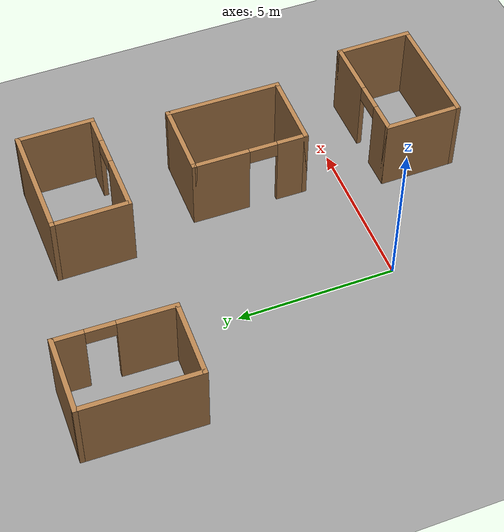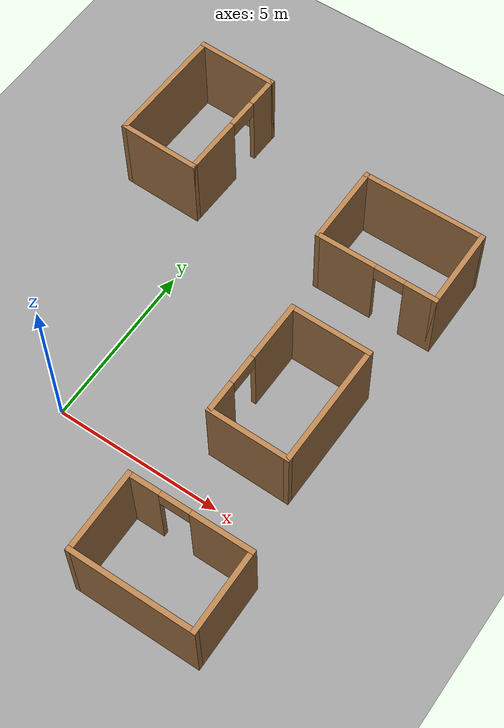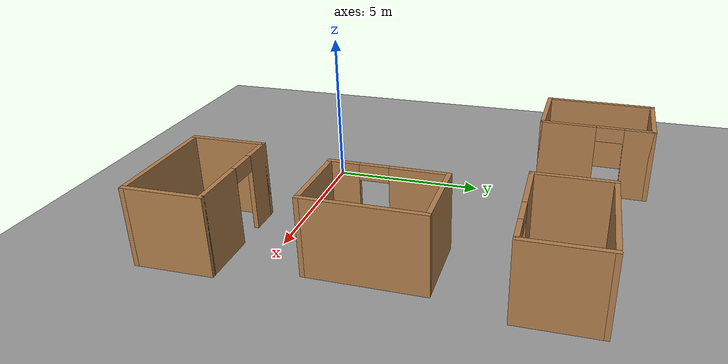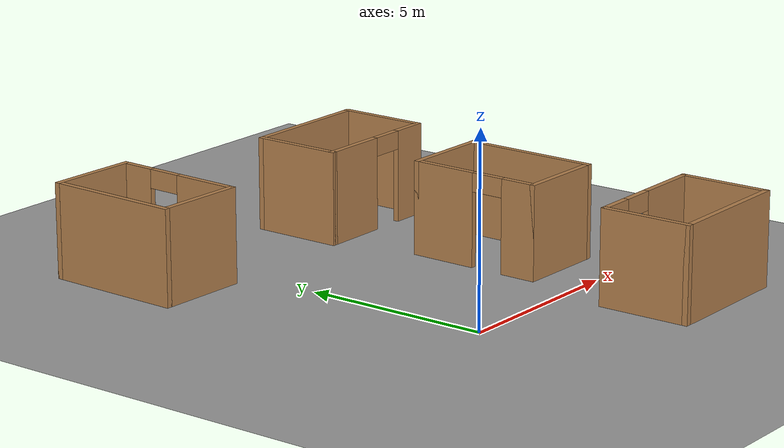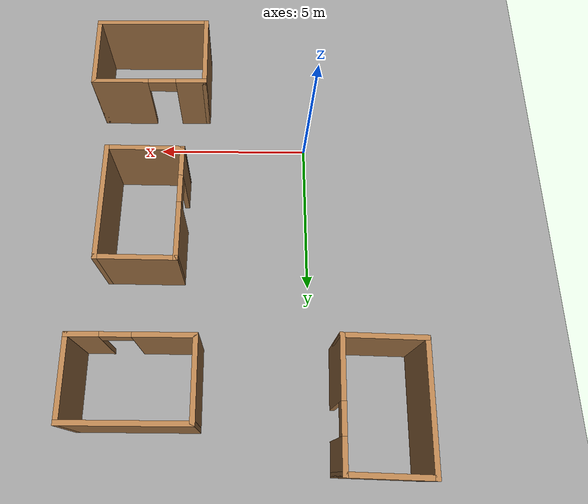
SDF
<sdf version="1.6">
 <world name="default">
  <model name="ground_plane_0">
   <static>1</static>
   <link name="link">
    <collision name="collision">
     <geometry><plane><normal>0 0 1</normal><size>100 100</size></plane></geometry>
     <surface><friction><ode><mu>100</mu><mu2>50</mu2></ode></friction></surface>
    </collision>
    <visual name="visual">
     <cast_shadows>0</cast_shadows>
     <geometry><plane><normal>0 0 1</normal><size>100 100</size></plane></geometry>
     <material>
      <script><uri>file://media/materials/scripts/gazebo.material</uri><name>Gazebo/Grey</name></script>
     </material>
    </visual>
    <velocity_decay><linear>0</linear><angular>0</angular></velocity_decay>
   </link>
   <pose>0.497681 0 0 0 -0 0</pose>
  </model>
  <model name="Small_Room_clone_3">
   <pose>-1.81019 8.891 0 0 -0 1.54404</pose>
   <link name="Wall_0">
    <pose>0 -1.175 0 0 -0 0</pose>
    <visual name="Wall_0_Visual_0">
     <pose>-0.9525 0 1.25 0 -0 0</pose>
     <geometry><box><size>1.845 0.15 2.5</size></box></geometry>
     <material>
      <script><uri>file://media/materials/scripts/gazebo.material</uri><name>Gazebo/Wood</name></script>
      <ambient>1 1 1 1</ambient>
     </material>
     <meta><layer>0</layer></meta>
    </visual>
    <collision name="Wall_0_Collision_0">
     <geometry><box><size>1.845 0.15 2.5</size></box></geometry>
     <pose>-0.9525 0 1.25 0 -0 0</pose>
    </collision>
    <visual name="Wall_0_Visual_1">
     <pose>1.3725 0 1.25 0 -0 0</pose>
     <geometry><box><size>1.005 0.15 2.5</size></box></geometry>
     <material>
      <script><uri>file://media/materials/scripts/gazebo.material</uri><name>Gazebo/Wood</name></script>
      <ambient>1 1 1 1</ambient>
     </material>
     <meta><layer>0</layer></meta>
    </visual>
    <collision name="Wall_0_Collision_1">
     <geometry><box><size>1.005 0.15 2.5</size></box></geometry>
     <pose>1.3725 0 1.25 0 -0 0</pose>
    </collision>
    <visual name="Wall_0_Visual_2">
     <pose>0.42 0 2.25 0 -0 0</pose>
     <geometry><box><size>0.9 0.15 0.5</size></box></geometry>
     <material>
      <script><uri>file://media/materials/scripts/gazebo.material</uri><name>Gazebo/Wood</name></script>
      <ambient>1 1 1 1</ambient>
     </material>
     <meta><layer>0</layer></meta>
    </visual>
    <collision name="Wall_0_Collision_2">
     <geometry><box><size>0.9 0.15 0.5</size></box></geometry>
     <pose>0.42 0 2.25 0 -0 0</pose>
    </collision>
   </link>
   <link name="Wall_1">
    <collision name="Wall_1_Collision">
     <geometry><box><size>2.5 0.15 2.5</size></box></geometry>
     <pose>0 0 1.25 0 -0 0</pose>
    </collision>
    <visual name="Wall_1_Visual">
     <pose>0 0 1.25 0 -0 0</pose>
     <geometry><box><size>2.5 0.15 2.5</size></box></geometry>
     <material>
      <script><uri>file://media/materials/scripts/gazebo.material</uri><name>Gazebo/Wood</name></script>
      <ambient>1 1 1 1</ambient>
     </material>
     <meta><layer>0</layer></meta>
    </visual>
    <pose>1.8 0 0 0 -0 1.5708</pose>
   </link>
   <link name="Wall_2">
    <collision name="Wall_2_Collision">
     <geometry><box><size>3.75 0.15 2.5</size></box></geometry>
     <pose>0 0 1.25 0 -0 0</pose>
    </collision>
    <visual name="Wall_2_Visual">
     <pose>0 0 1.25 0 -0 0</pose>
     <geometry><box><size>3.75 0.15 2.5</size></box></geometry>
     <material>
      <script><uri>file://media/materials/scripts/gazebo.material</uri><name>Gazebo/Wood</name></script>
      <ambient>0.760784 0.662745 0.627451 1</ambient>
     </material>
     <meta><layer>0</layer></meta>
    </visual>
    <pose>0 1.175 0 0 -0 3.14159</pose>
   </link>
   <link name="Wall_3">
    <collision name="Wall_3_Collision">
     <geometry><box><size>2.5 0.15 2.5</size></box></geometry>
     <pose>0 0 1.25 0 -0 0</pose>
    </collision>
    <visual name="Wall_3_Visual">
     <pose>0 0 1.25 0 -0 0</pose>
     <geometry><box><size>2.5 0.15 2.5</size></box></geometry>
     <material>
      <script><uri>file://media/materials/scripts/gazebo.material</uri><name>Gazebo/Wood</name></script>
      <ambient>0.760784 0.662745 0.627451 1</ambient>
     </material>
     <meta><layer>0</layer></meta>
    </visual>
    <pose>-1.8 0 0 0 0 -1.5708</pose>
   </link>
   <static>1</static>
  </model>
  <model name="Small_Room_clone_0_0">
   <link name="Wall_0">
    <pose>0 -1.175 0 0 -0 0</pose>
    <inertial>
     <mass>1</mass>
     <inertia><ixx>1</ixx><ixy>0</ixy><ixz>0</ixz><iyy>1</iyy><iyz>0</iyz><izz>1</izz></inertia>
    </inertial>
    <visual name="Wall_0_Visual_0">
     <pose>-0.9525 0 1.25 0 -0 0</pose>
     <geometry><box><size>1.845 0.15 2.5</size></box></geometry>
     <material>
      <script><uri>file://media/materials/scripts/gazebo.material</uri><name>Gazebo/Wood</name></script>
      <ambient>1 1 1 1</ambient>
      <diffuse>1 1 1 1</diffuse>
      <specular>0.2 0.2 0.2 1</specular>
      <emissive>0 0 0 1</emissive>
      <shader type="vertex"><normal_map>__default__</normal_map></shader>
     </material>
     <meta><layer>0</layer></meta>
    </visual>
    <visual name="Wall_0_Visual_1">
     <pose>1.3725 0 1.25 0 -0 0</pose>
     <geometry><box><size>1.005 0.15 2.5</size></box></geometry>
     <material>
      <script><uri>file://media/materials/scripts/gazebo.material</uri><name>Gazebo/Wood</name></script>
      <ambient>1 1 1 1</ambient>
      <diffuse>1 1 1 1</diffuse>
      <specular>0.2 0.2 0.2 1</specular>
      <emissive>0 0 0 1</emissive>
      <shader type="vertex"><normal_map>__default__</normal_map></shader>
     </material>
     <meta><layer>0</layer></meta>
    </visual>
    <visual name="Wall_0_Visual_2">
     <pose>0.42 0 2.25 0 -0 0</pose>
     <geometry><box><size>0.9 0.15 0.5</size></box></geometry>
     <material>
      <script><uri>file://media/materials/scripts/gazebo.material</uri><name>Gazebo/Wood</name></script>
      <ambient>1 1 1 1</ambient>
      <diffuse>1 1 1 1</diffuse>
      <specular>0.2 0.2 0.2 1</specular>
      <emissive>0 0 0 1</emissive>
      <shader type="vertex"><normal_map>__default__</normal_map></shader>
     </material>
     <meta><layer>0</layer></meta>
    </visual>
    <collision name="Wall_0_Collision_0">
     <pose>-0.9525 0 1.25 0 -0 0</pose>
     <geometry><box><size>1.845 0.15 2.5</size></box></geometry>
     <surface>
      <friction>
       <ode><mu>1</mu><mu2>1</mu2><fdir1>0 0 0</fdir1><slip1>0</slip1><slip2>0</slip2></ode>
       <torsional>
        <coefficient>1</coefficient>
        <patch_radius>0</patch_radius>
        <surface_radius>0</surface_radius>
        <use_patch_radius>1</use_patch_radius>
        <ode><slip>0</slip></ode>
       </torsional>
      </friction>
      <bounce><restitution_coefficient>0</restitution_coefficient><threshold>1e+06</threshold></bounce>
      <contact>
       <collide_without_contact>0</collide_without_contact>
       <collide_without_contact_bitmask>1</collide_without_contact_bitmask>
       <collide_bitmask>1</collide_bitmask>
       <ode>
        <soft_cfm>0</soft_cfm>
        <soft_erp>0.2</soft_erp>
        <kp>1e+13</kp>
        <kd>1</kd>
        <max_vel>0.01</max_vel>
        <min_depth>0</min_depth>
       </ode>
       <bullet>
        <split_impulse>1</split_impulse>
        <split_impulse_penetration_threshold>-0.01</split_impulse_penetration_threshold>
        <soft_cfm>0</soft_cfm>
        <soft_erp>0.2</soft_erp>
        <kp>1e+13</kp>
        <kd>1</kd>
       </bullet>
      </contact>
     </surface>
    </collision>
    <collision name="Wall_0_Collision_1">
     <pose>1.3725 0 1.25 0 -0 0</pose>
     <geometry><box><size>1.005 0.15 2.5</size></box></geometry>
     <surface>
      <friction>
       <ode><mu>1</mu><mu2>1</mu2><fdir1>0 0 0</fdir1><slip1>0</slip1><slip2>0</slip2></ode>
       <torsional>
        <coefficient>1</coefficient>
        <patch_radius>0</patch_radius>
        <surface_radius>0</surface_radius>
        <use_patch_radius>1</use_patch_radius>
        <ode><slip>0</slip></ode>
       </torsional>
      </friction>
      <bounce><restitution_coefficient>0</restitution_coefficient><threshold>1e+06</threshold></bounce>
      <contact>
       <collide_without_contact>0</collide_without_contact>
       <collide_without_contact_bitmask>1</collide_without_contact_bitmask>
       <collide_bitmask>1</collide_bitmask>
       <ode>
        <soft_cfm>0</soft_cfm>
        <soft_erp>0.2</soft_erp>
        <kp>1e+13</kp>
        <kd>1</kd>
        <max_vel>0.01</max_vel>
        <min_depth>0</min_depth>
       </ode>
       <bullet>
        <split_impulse>1</split_impulse>
        <split_impulse_penetration_threshold>-0.01</split_impulse_penetration_threshold>
        <soft_cfm>0</soft_cfm>
        <soft_erp>0.2</soft_erp>
        <kp>1e+13</kp>
        <kd>1</kd>
       </bullet>
      </contact>
     </surface>
    </collision>
    <collision name="Wall_0_Collision_2">
     <pose>0.42 0 2.25 0 -0 0</pose>
     <geometry><box><size>0.9 0.15 0.5</size></box></geometry>
     <surface>
      <friction>
       <ode><mu>1</mu><mu2>1</mu2><fdir1>0 0 0</fdir1><slip1>0</slip1><slip2>0</slip2></ode>
       <torsional>
        <coefficient>1</coefficient>
        <patch_radius>0</patch_radius>
        <surface_radius>0</surface_radius>
        <use_patch_radius>1</use_patch_radius>
        <ode><slip>0</slip></ode>
       </torsional>
      </friction>
      <bounce><restitution_coefficient>0</restitution_coefficient><threshold>1e+06</threshold></bounce>
      <contact>
       <collide_without_contact>0</collide_without_contact>
       <collide_without_contact_bitmask>1</collide_without_contact_bitmask>
       <collide_bitmask>1</collide_bitmask>
       <ode>
        <soft_cfm>0</soft_cfm>
        <soft_erp>0.2</soft_erp>
        <kp>1e+13</kp>
        <kd>1</kd>
        <max_vel>0.01</max_vel>
        <min_depth>0</min_depth>
       </ode>
       <bullet>
        <split_impulse>1</split_impulse>
        <split_impulse_penetration_threshold>-0.01</split_impulse_penetration_threshold>
        <soft_cfm>0</soft_cfm>
        <soft_erp>0.2</soft_erp>
        <kp>1e+13</kp>
        <kd>1</kd>
       </bullet>
      </contact>
     </surface>
    </collision>
   </link>
   <link name="Wall_1">
    <pose>1.8 0 0 0 -0 1.5708</pose>
    <inertial>
     <mass>1</mass>
     <inertia><ixx>1</ixx><ixy>0</ixy><ixz>0</ixz><iyy>1</iyy><iyz>0</iyz><izz>1</izz></inertia>
    </inertial>
    <visual name="Wall_1_Visual">
     <pose>0 0 1.25 0 -0 0</pose>
     <geometry><box><size>2.5 0.15 2.5</size></box></geometry>
     <material>
      <script><uri>file://media/materials/scripts/gazebo.material</uri><name>Gazebo/Wood</name></script>
      <ambient>1 1 1 1</ambient>
      <diffuse>1 1 1 1</diffuse>
      <specular>0.2 0.2 0.2 1</specular>
      <emissive>0 0 0 1</emissive>
      <shader type="vertex"><normal_map>__default__</normal_map></shader>
     </material>
     <meta><layer>0</layer></meta>
    </visual>
    <collision name="Wall_1_Collision">
     <pose>0 0 1.25 0 -0 0</pose>
     <geometry><box><size>2.5 0.15 2.5</size></box></geometry>
     <surface>
      <friction>
       <ode><mu>1</mu><mu2>1</mu2><fdir1>0 0 0</fdir1><slip1>0</slip1><slip2>0</slip2></ode>
       <torsional>
        <coefficient>1</coefficient>
        <patch_radius>0</patch_radius>
        <surface_radius>0</surface_radius>
        <use_patch_radius>1</use_patch_radius>
        <ode><slip>0</slip></ode>
       </torsional>
      </friction>
      <bounce><restitution_coefficient>0</restitution_coefficient><threshold>1e+06</threshold></bounce>
      <contact>
       <collide_without_contact>0</collide_without_contact>
       <collide_without_contact_bitmask>1</collide_without_contact_bitmask>
       <collide_bitmask>1</collide_bitmask>
       <ode>
        <soft_cfm>0</soft_cfm>
        <soft_erp>0.2</soft_erp>
        <kp>1e+13</kp>
        <kd>1</kd>
        <max_vel>0.01</max_vel>
        <min_depth>0</min_depth>
       </ode>
       <bullet>
        <split_impulse>1</split_impulse>
        <split_impulse_penetration_threshold>-0.01</split_impulse_penetration_threshold>
        <soft_cfm>0</soft_cfm>
        <soft_erp>0.2</soft_erp>
        <kp>1e+13</kp>
        <kd>1</kd>
       </bullet>
      </contact>
     </surface>
    </collision>
   </link>
   <link name="Wall_2">
    <pose>-0 1.175 0 0 -0 3.14159</pose>
    <visual name="Wall_2_Visual">
     <pose>0 0 1.25 0 -0 0</pose>
     <geometry><box><size>3.75 0.15 2.5</size></box></geometry>
     <material>
      <script><uri>file://media/materials/scripts/gazebo.material</uri><name>Gazebo/Wood</name></script>
      <ambient>0.760784 0.662745 0.627451 1</ambient>
      <diffuse>1 1 1 1</diffuse>
      <specular>0.2 0.2 0.2 1</specular>
      <emissive>0 0 0 1</emissive>
     </material>
     <meta><layer>0</layer></meta>
    </visual>
    <collision name="Wall_2_Collision">
     <pose>0 0 1.25 0 -0 0</pose>
     <geometry><box><size>3.75 0.15 2.5</size></box></geometry>
     <surface>
      <friction>
       <ode><mu>1</mu><mu2>1</mu2><fdir1>0 0 0</fdir1><slip1>0</slip1><slip2>0</slip2></ode>
       <torsional>
        <coefficient>1</coefficient>
        <patch_radius>0</patch_radius>
        <surface_radius>0</surface_radius>
        <use_patch_radius>1</use_patch_radius>
        <ode><slip>0</slip></ode>
       </torsional>
      </friction>
      <bounce><restitution_coefficient>0</restitution_coefficient><threshold>1e+06</threshold></bounce>
      <contact>
       <collide_without_contact>0</collide_without_contact>
       <collide_without_contact_bitmask>1</collide_without_contact_bitmask>
       <collide_bitmask>1</collide_bitmask>
       <ode>
        <soft_cfm>0</soft_cfm>
        <soft_erp>0.2</soft_erp>
        <kp>1e+13</kp>
        <kd>1</kd>
        <max_vel>0.01</max_vel>
        <min_depth>0</min_depth>
       </ode>
       <bullet>
        <split_impulse>1</split_impulse>
        <split_impulse_penetration_threshold>-0.01</split_impulse_penetration_threshold>
        <soft_cfm>0</soft_cfm>
        <soft_erp>0.2</soft_erp>
        <kp>1e+13</kp>
        <kd>1</kd>
       </bullet>
      </contact>
     </surface>
    </collision>
   </link>
   <link name="Wall_3">
    <pose>-1.8 -0 0 0 0 -1.5708</pose>
    <inertial>
     <mass>1</mass>
     <inertia><ixx>1</ixx><ixy>0</ixy><ixz>0</ixz><iyy>1</iyy><iyz>0</iyz><izz>1</izz></inertia>
    </inertial>
    <visual name="Wall_3_Visual">
     <pose>0 0 1.25 0 -0 0</pose>
     <geometry><box><size>2.5 0.15 2.5</size></box></geometry>
     <material>
      <script><uri>file://media/materials/scripts/gazebo.material</uri><name>Gazebo/Wood</name></script>
      <ambient>0.761 0.663 0.627 1</ambient>
      <diffuse>1 1 1 1</diffuse>
      <specular>0.2 0.2 0.2 1</specular>
      <emissive>0 0 0 1</emissive>
      <shader type="vertex"><normal_map>__default__</normal_map></shader>
     </material>
     <meta><layer>0</layer></meta>
    </visual>
    <collision name="Wall_3_Collision">
     <pose>0 0 1.25 0 -0 0</pose>
     <geometry><box><size>2.5 0.15 2.5</size></box></geometry>
     <surface>
      <friction>
       <ode><mu>1</mu><mu2>1</mu2><fdir1>0 0 0</fdir1><slip1>0</slip1><slip2>0</slip2></ode>
       <torsional>
        <coefficient>1</coefficient>
        <patch_radius>0</patch_radius>
        <surface_radius>0</surface_radius>
        <use_patch_radius>1</use_patch_radius>
        <ode><slip>0</slip></ode>
       </torsional>
      </friction>
      <bounce><restitution_coefficient>0</restitution_coefficient><threshold>1e+06</threshold></bounce>
      <contact>
       <collide_without_contact>0</collide_without_contact>
       <collide_without_contact_bitmask>1</collide_without_contact_bitmask>
       <collide_bitmask>1</collide_bitmask>
       <ode>
        <soft_cfm>0</soft_cfm>
        <soft_erp>0.2</soft_erp>
        <kp>1e+13</kp>
        <kd>1</kd>
        <max_vel>0.01</max_vel>
        <min_depth>0</min_depth>
       </ode>
       <bullet>
        <split_impulse>1</split_impulse>
        <split_impulse_penetration_threshold>-0.01</split_impulse_penetration_threshold>
        <soft_cfm>0</soft_cfm>
        <soft_erp>0.2</soft_erp>
        <kp>1e+13</kp>
        <kd>1</kd>
       </bullet>
      </contact>
     </surface>
    </collision>
   </link>
   <static>1</static>
   <pose>5.21109 -2.41031 0 0 0 -3.13544</pose>
  </model>
  <model name="Small_Room_clone_1_0">
   <link name="Wall_0">
    <pose>0 -1.175 0 0 -0 0</pose>
    <inertial>
     <mass>1</mass>
     <inertia><ixx>1</ixx><ixy>0</ixy><ixz>0</ixz><iyy>1</iyy><iyz>0</iyz><izz>1</izz></inertia>
    </inertial>
    <visual name="Wall_0_Visual_0">
     <pose>-0.9525 0 1.25 0 -0 0</pose>
     <geometry><box><size>1.845 0.15 2.5</size></box></geometry>
     <material>
      <script><uri>file://media/materials/scripts/gazebo.material</uri><name>Gazebo/Wood</name></script>
      <ambient>0.4 0.3 1 1</ambient>
      <diffuse>0.4 0.6 1 1</diffuse>
      <specular>0.4 0.6 0.2 1</specular>
      <emissive>0.4 0 0 1</emissive>
      <shader type="vertex"><normal_map>__default__</normal_map></shader>
     </material>
     <meta><layer>0</layer></meta>
    </visual>
    <visual name="Wall_0_Visual_1">
     <pose>1.3725 0 1.25 0 -0 0</pose>
     <geometry><box><size>1.005 0.15 2.5</size></box></geometry>
     <material>
      <script><uri>file://media/materials/scripts/gazebo.material</uri><name>Gazebo/Wood</name></script>
      <ambient>0.4 0.5 0.7 1</ambient>
      <diffuse>0.6 0.6 0.7 1</diffuse>
      <specular>0.5 0.2 0.5 1</specular>
      <emissive>0 0 0 1</emissive>
      <shader type="vertex"><normal_map>__default__</normal_map></shader>
     </material>
     <meta><layer>0</layer></meta>
    </visual>
    <visual name="Wall_0_Visual_2">
     <pose>0.42 0 2.25 0 -0 0</pose>
     <geometry><box><size>0.9 0.15 0.5</size></box></geometry>
     <material>
      <script><uri>file://media/materials/scripts/gazebo.material</uri><name>Gazebo/Wood</name></script>
      <ambient>0.7 0.6 0.6 1</ambient>
      <diffuse>0.6 0.7 0.7 1</diffuse>
      <specular>0.2 0.3 0.1 1</specular>
      <emissive>0 0 0 1</emissive>
      <shader type="vertex"><normal_map>__default__</normal_map></shader>
     </material>
     <meta><layer>0</layer></meta>
    </visual>
    <collision name="Wall_0_Collision_0">
     <pose>-0.9525 0 1.25 0 -0 0</pose>
     <geometry><box><size>1.845 0.15 2.5</size></box></geometry>
     <surface>
      <friction>
       <ode><mu>1</mu><mu2>1</mu2><fdir1>0 0 0</fdir1><slip1>0</slip1><slip2>0</slip2></ode>
       <torsional>
        <coefficient>1</coefficient>
        <patch_radius>0</patch_radius>
        <surface_radius>0</surface_radius>
        <use_patch_radius>1</use_patch_radius>
        <ode><slip>0</slip></ode>
       </torsional>
      </friction>
      <bounce><restitution_coefficient>0</restitution_coefficient><threshold>1e+06</threshold></bounce>
      <contact>
       <collide_without_contact>0</collide_without_contact>
       <collide_without_contact_bitmask>1</collide_without_contact_bitmask>
       <collide_bitmask>1</collide_bitmask>
       <ode>
        <soft_cfm>0</soft_cfm>
        <soft_erp>0.2</soft_erp>
        <kp>1e+13</kp>
        <kd>1</kd>
        <max_vel>0.01</max_vel>
        <min_depth>0</min_depth>
       </ode>
       <bullet>
        <split_impulse>1</split_impulse>
        <split_impulse_penetration_threshold>-0.01</split_impulse_penetration_threshold>
        <soft_cfm>0</soft_cfm>
        <soft_erp>0.2</soft_erp>
        <kp>1e+13</kp>
        <kd>1</kd>
       </bullet>
      </contact>
     </surface>
    </collision>
    <collision name="Wall_0_Collision_1">
     <pose>1.3725 0 1.25 0 -0 0</pose>
     <geometry><box><size>1.005 0.15 2.5</size></box></geometry>
     <surface>
      <friction>
       <ode><mu>1</mu><mu2>1</mu2><fdir1>0 0 0</fdir1><slip1>0</slip1><slip2>0</slip2></ode>
       <torsional>
        <coefficient>1</coefficient>
        <patch_radius>0</patch_radius>
        <surface_radius>0</surface_radius>
        <use_patch_radius>1</use_patch_radius>
        <ode><slip>0</slip></ode>
       </torsional>
      </friction>
      <bounce><restitution_coefficient>0</restitution_coefficient><threshold>1e+06</threshold></bounce>
      <contact>
       <collide_without_contact>0</collide_without_contact>
       <collide_without_contact_bitmask>1</collide_without_contact_bitmask>
       <collide_bitmask>1</collide_bitmask>
       <ode>
        <soft_cfm>0</soft_cfm>
        <soft_erp>0.2</soft_erp>
        <kp>1e+13</kp>
        <kd>1</kd>
        <max_vel>0.01</max_vel>
        <min_depth>0</min_depth>
       </ode>
       <bullet>
        <split_impulse>1</split_impulse>
        <split_impulse_penetration_threshold>-0.01</split_impulse_penetration_threshold>
        <soft_cfm>0</soft_cfm>
        <soft_erp>0.2</soft_erp>
        <kp>1e+13</kp>
        <kd>1</kd>
       </bullet>
      </contact>
     </surface>
    </collision>
    <collision name="Wall_0_Collision_2">
     <pose>0.42 0 2.25 0 -0 0</pose>
     <geometry><box><size>0.9 0.15 0.5</size></box></geometry>
     <surface>
      <friction>
       <ode><mu>1</mu><mu2>1</mu2><fdir1>0 0 0</fdir1><slip1>0</slip1><slip2>0</slip2></ode>
       <torsional>
        <coefficient>1</coefficient>
        <patch_radius>0</patch_radius>
        <surface_radius>0</surface_radius>
        <use_patch_radius>1</use_patch_radius>
        <ode><slip>0</slip></ode>
       </torsional>
      </friction>
      <bounce><restitution_coefficient>0</restitution_coefficient><threshold>1e+06</threshold></bounce>
      <contact>
       <collide_without_contact>0</collide_without_contact>
       <collide_without_contact_bitmask>1</collide_without_contact_bitmask>
       <collide_bitmask>1</collide_bitmask>
       <ode>
        <soft_cfm>0</soft_cfm>
        <soft_erp>0.2</soft_erp>
        <kp>1e+13</kp>
        <kd>1</kd>
        <max_vel>0.01</max_vel>
        <min_depth>0</min_depth>
       </ode>
       <bullet>
        <split_impulse>1</split_impulse>
        <split_impulse_penetration_threshold>-0.01</split_impulse_penetration_threshold>
        <soft_cfm>0</soft_cfm>
        <soft_erp>0.2</soft_erp>
        <kp>1e+13</kp>
        <kd>1</kd>
       </bullet>
      </contact>
     </surface>
    </collision>
   </link>
   <link name="Wall_1">
    <pose>1.8 0 0 0 -0 1.5708</pose>
    <inertial>
     <mass>1</mass>
     <inertia><ixx>1</ixx><ixy>0</ixy><ixz>0</ixz><iyy>1</iyy><iyz>0</iyz><izz>1</izz></inertia>
    </inertial>
    <visual name="Wall_1_Visual">
     <pose>0 0 1.25 0 -0 0</pose>
     <geometry><box><size>2.5 0.15 2.5</size></box></geometry>
     <material>
      <script><uri>file://media/materials/scripts/gazebo.material</uri><name>Gazebo/Wood</name></script>
      <ambient>1 1 1 1</ambient>
      <diffuse>0.6 0.7 0.6 1</diffuse>
      <specular>0.1 0.2 0.2 1</specular>
      <emissive>0 0 0 1</emissive>
      <shader type="vertex"><normal_map>__default__</normal_map></shader>
     </material>
     <meta><layer>0</layer></meta>
    </visual>
    <collision name="Wall_1_Collision">
     <pose>0 0 1.25 0 -0 0</pose>
     <geometry><box><size>2.5 0.15 2.5</size></box></geometry>
     <surface>
      <friction>
       <ode><mu>1</mu><mu2>1</mu2><fdir1>0 0 0</fdir1><slip1>0</slip1><slip2>0</slip2></ode>
       <torsional>
        <coefficient>1</coefficient>
        <patch_radius>0</patch_radius>
        <surface_radius>0</surface_radius>
        <use_patch_radius>1</use_patch_radius>
        <ode><slip>0</slip></ode>
       </torsional>
      </friction>
      <bounce><restitution_coefficient>0</restitution_coefficient><threshold>1e+06</threshold></bounce>
      <contact>
       <collide_without_contact>0</collide_without_contact>
       <collide_without_contact_bitmask>1</collide_without_contact_bitmask>
       <collide_bitmask>1</collide_bitmask>
       <ode>
        <soft_cfm>0</soft_cfm>
        <soft_erp>0.2</soft_erp>
        <kp>1e+13</kp>
        <kd>1</kd>
        <max_vel>0.01</max_vel>
        <min_depth>0</min_depth>
       </ode>
       <bullet>
        <split_impulse>1</split_impulse>
        <split_impulse_penetration_threshold>-0.01</split_impulse_penetration_threshold>
        <soft_cfm>0</soft_cfm>
        <soft_erp>0.2</soft_erp>
        <kp>1e+13</kp>
        <kd>1</kd>
       </bullet>
      </contact>
     </surface>
    </collision>
   </link>
   <link name="Wall_2">
    <pose>-0 1.175 0 0 -0 3.14159</pose>
    <visual name="Wall_2_Visual">
     <pose>0 0 1.25 0 -0 0</pose>
     <geometry><box><size>3.75 0.15 2.5</size></box></geometry>
     <material>
      <script><uri>file://media/materials/scripts/gazebo.material</uri><name>Gazebo/Wood</name></script>
      <ambient>0.760784 0.662745 0.627451 1</ambient>
      <diffuse>1 1 1 1</diffuse>
      <specular>0.2 0.2 0.2 1</specular>
      <emissive>0 0 0 1</emissive>
     </material>
     <meta><layer>0</layer></meta>
    </visual>
    <collision name="Wall_2_Collision">
     <pose>0 0 1.25 0 -0 0</pose>
     <geometry><box><size>3.75 0.15 2.5</size></box></geometry>
     <surface>
      <friction>
       <ode><mu>1</mu><mu2>1</mu2><fdir1>0 0 0</fdir1><slip1>0</slip1><slip2>0</slip2></ode>
       <torsional>
        <coefficient>1</coefficient>
        <patch_radius>0</patch_radius>
        <surface_radius>0</surface_radius>
        <use_patch_radius>1</use_patch_radius>
        <ode><slip>0</slip></ode>
       </torsional>
      </friction>
      <bounce><restitution_coefficient>0</restitution_coefficient><threshold>1e+06</threshold></bounce>
      <contact>
       <collide_without_contact>0</collide_without_contact>
       <collide_without_contact_bitmask>1</collide_without_contact_bitmask>
       <collide_bitmask>1</collide_bitmask>
       <ode>
        <soft_cfm>0</soft_cfm>
        <soft_erp>0.2</soft_erp>
        <kp>1e+13</kp>
        <kd>1</kd>
        <max_vel>0.01</max_vel>
        <min_depth>0</min_depth>
       </ode>
       <bullet>
        <split_impulse>1</split_impulse>
        <split_impulse_penetration_threshold>-0.01</split_impulse_penetration_threshold>
        <soft_cfm>0</soft_cfm>
        <soft_erp>0.2</soft_erp>
        <kp>1e+13</kp>
        <kd>1</kd>
       </bullet>
      </contact>
     </surface>
    </collision>
   </link>
   <link name="Wall_3">
    <pose>-1.8 -0 0 0 0 -1.5708</pose>
    <inertial>
     <mass>1</mass>
     <inertia><ixx>1</ixx><ixy>0</ixy><ixz>0</ixz><iyy>1</iyy><iyz>0</iyz><izz>1</izz></inertia>
    </inertial>
    <visual name="Wall_3_Visual">
     <pose>0 0 1.25 0 -0 0</pose>
     <geometry><box><size>2.5 0.15 2.5</size></box></geometry>
     <material>
      <script><uri>file://media/materials/scripts/gazebo.material</uri><name>Gazebo/Wood</name></script>
      <ambient>0 0.663 0.627 1</ambient>
      <diffuse>0 1 1 1</diffuse>
      <specular>0.4 0.2 0.2 1</specular>
      <emissive>0 0 0 1</emissive>
      <shader type="vertex"><normal_map>__default__</normal_map></shader>
     </material>
     <meta><layer>0</layer></meta>
    </visual>
    <collision name="Wall_3_Collision">
     <pose>0 0 1.25 0 -0 0</pose>
     <geometry><box><size>2.5 0.15 2.5</size></box></geometry>
     <surface>
      <friction>
       <ode><mu>1</mu><mu2>1</mu2><fdir1>0 0 0</fdir1><slip1>0</slip1><slip2>0</slip2></ode>
       <torsional>
        <coefficient>1</coefficient>
        <patch_radius>0</patch_radius>
        <surface_radius>0</surface_radius>
        <use_patch_radius>1</use_patch_radius>
        <ode><slip>0</slip></ode>
       </torsional>
      </friction>
      <bounce><restitution_coefficient>0</restitution_coefficient><threshold>1e+06</threshold></bounce>
      <contact>
       <collide_without_contact>0</collide_without_contact>
       <collide_without_contact_bitmask>1</collide_without_contact_bitmask>
       <collide_bitmask>1</collide_bitmask>
       <ode>
        <soft_cfm>0</soft_cfm>
        <soft_erp>0.2</soft_erp>
        <kp>1e+13</kp>
        <kd>1</kd>
        <max_vel>0.01</max_vel>
        <min_depth>0</min_depth>
       </ode>
       <bullet>
        <split_impulse>1</split_impulse>
        <split_impulse_penetration_threshold>-0.01</split_impulse_penetration_threshold>
        <soft_cfm>0</soft_cfm>
        <soft_erp>0.2</soft_erp>
        <kp>1e+13</kp>
        <kd>1</kd>
       </bullet>
      </contact>
     </surface>
    </collision>
   </link>
   <static>1</static>
   <pose>5.19818 3.04333 0 0 0 -1.5813</pose>
  </model>
  <model name="Small_Room_clone_2_0">
   <link name="Wall_0">
    <pose>0 -1.175 0 0 -0 0</pose>
    <inertial>
     <mass>1</mass>
     <inertia><ixx>1</ixx><ixy>0</ixy><ixz>0</ixz><iyy>1</iyy><iyz>0</iyz><izz>1</izz></inertia>
    </inertial>
    <visual name="Wall_0_Visual_1">
     <pose>1.3725 0 1.25 0 -0 0</pose>
     <geometry><box><size>1.005 0.15 2.5</size></box></geometry>
     <material>
      <script><uri>file://media/materials/scripts/gazebo.material</uri><name>Gazebo/Wood</name></script>
      <ambient>0.5 0.6 0.6 1</ambient>
      <diffuse>0.6 0.6 0.6 1</diffuse>
      <specular>0.4 0.2 0.2 1</specular>
      <emissive>0 0 0 1</emissive>
      <shader type="vertex"><normal_map>__default__</normal_map></shader>
     </material>
     <meta><layer>0</layer></meta>
    </visual>
    <visual name="Wall_0_Visual_2">
     <pose>0.42 0 2.25 0 -0 0</pose>
     <geometry><box><size>0.9 0.15 0.5</size></box></geometry>
     <material>
      <script><uri>file://media/materials/scripts/gazebo.material</uri><name>Gazebo/Wood</name></script>
      <ambient>1 1 1 1</ambient>
      <diffuse>1 1 1 1</diffuse>
      <specular>0.2 0.2 0.2 1</specular>
      <emissive>0 0 0 1</emissive>
      <shader type="vertex"><normal_map>__default__</normal_map></shader>
     </material>
     <meta><layer>0</layer></meta>
    </visual>
    <visual name="Wall_0_Visual_0">
     <pose>-0.9525 0 1.25 0 -0 0</pose>
     <geometry><box><size>1.845 0.15 2.5</size></box></geometry>
     <material>
      <script><uri>file://media/materials/scripts/gazebo.material</uri><name>Gazebo/Wood</name></script>
      <ambient>0.6 0.6 0.6 1</ambient>
      <diffuse>0.6 0.6 0.3 1</diffuse>
      <specular>0.2 0.2 0.2 1</specular>
      <emissive>0 0 0 1</emissive>
      <shader type="vertex"><normal_map>__default__</normal_map></shader>
     </material>
     <meta><layer>0</layer></meta>
    </visual>
    <collision name="Wall_0_Collision_0">
     <pose>-0.9525 0 1.25 0 -0 0</pose>
     <geometry><box><size>1.845 0.15 2.5</size></box></geometry>
     <surface>
      <friction>
       <ode><mu>1</mu><mu2>1</mu2><fdir1>0 0 0</fdir1><slip1>0</slip1><slip2>0</slip2></ode>
       <torsional>
        <coefficient>1</coefficient>
        <patch_radius>0</patch_radius>
        <surface_radius>0</surface_radius>
        <use_patch_radius>1</use_patch_radius>
        <ode><slip>0</slip></ode>
       </torsional>
      </friction>
      <bounce><restitution_coefficient>0</restitution_coefficient><threshold>1e+06</threshold></bounce>
      <contact>
       <collide_without_contact>0</collide_without_contact>
       <collide_without_contact_bitmask>1</collide_without_contact_bitmask>
       <collide_bitmask>1</collide_bitmask>
       <ode>
        <soft_cfm>0</soft_cfm>
        <soft_erp>0.2</soft_erp>
        <kp>1e+13</kp>
        <kd>1</kd>
        <max_vel>0.01</max_vel>
        <min_depth>0</min_depth>
       </ode>
       <bullet>
        <split_impulse>1</split_impulse>
        <split_impulse_penetration_threshold>-0.01</split_impulse_penetration_threshold>
        <soft_cfm>0</soft_cfm>
        <soft_erp>0.2</soft_erp>
        <kp>1e+13</kp>
        <kd>1</kd>
       </bullet>
      </contact>
     </surface>
    </collision>
    <collision name="Wall_0_Collision_1">
     <pose>1.3725 0 1.25 0 -0 0</pose>
     <geometry><box><size>1.005 0.15 2.5</size></box></geometry>
     <surface>
      <friction>
       <ode><mu>1</mu><mu2>1</mu2><fdir1>0 0 0</fdir1><slip1>0</slip1><slip2>0</slip2></ode>
       <torsional>
        <coefficient>1</coefficient>
        <patch_radius>0</patch_radius>
        <surface_radius>0</surface_radius>
        <use_patch_radius>1</use_patch_radius>
        <ode><slip>0</slip></ode>
       </torsional>
      </friction>
      <bounce><restitution_coefficient>0</restitution_coefficient><threshold>1e+06</threshold></bounce>
      <contact>
       <collide_without_contact>0</collide_without_contact>
       <collide_without_contact_bitmask>1</collide_without_contact_bitmask>
       <collide_bitmask>1</collide_bitmask>
       <ode>
        <soft_cfm>0</soft_cfm>
        <soft_erp>0.2</soft_erp>
        <kp>1e+13</kp>
        <kd>1</kd>
        <max_vel>0.01</max_vel>
        <min_depth>0</min_depth>
       </ode>
       <bullet>
        <split_impulse>1</split_impulse>
        <split_impulse_penetration_threshold>-0.01</split_impulse_penetration_threshold>
        <soft_cfm>0</soft_cfm>
        <soft_erp>0.2</soft_erp>
        <kp>1e+13</kp>
        <kd>1</kd>
       </bullet>
      </contact>
     </surface>
    </collision>
    <collision name="Wall_0_Collision_2">
     <pose>0.42 0 2.25 0 -0 0</pose>
     <geometry><box><size>0.9 0.15 0.5</size></box></geometry>
     <surface>
      <friction>
       <ode><mu>1</mu><mu2>1</mu2><fdir1>0 0 0</fdir1><slip1>0</slip1><slip2>0</slip2></ode>
       <torsional>
        <coefficient>1</coefficient>
        <patch_radius>0</patch_radius>
        <surface_radius>0</surface_radius>
        <use_patch_radius>1</use_patch_radius>
        <ode><slip>0</slip></ode>
       </torsional>
      </friction>
      <bounce><restitution_coefficient>0</restitution_coefficient><threshold>1e+06</threshold></bounce>
      <contact>
       <collide_without_contact>0</collide_without_contact>
       <collide_without_contact_bitmask>1</collide_without_contact_bitmask>
       <collide_bitmask>1</collide_bitmask>
       <ode>
        <soft_cfm>0</soft_cfm>
        <soft_erp>0.2</soft_erp>
        <kp>1e+13</kp>
        <kd>1</kd>
        <max_vel>0.01</max_vel>
        <min_depth>0</min_depth>
       </ode>
       <bullet>
        <split_impulse>1</split_impulse>
        <split_impulse_penetration_threshold>-0.01</split_impulse_penetration_threshold>
        <soft_cfm>0</soft_cfm>
        <soft_erp>0.2</soft_erp>
        <kp>1e+13</kp>
        <kd>1</kd>
       </bullet>
      </contact>
     </surface>
    </collision>
   </link>
   <link name="Wall_1">
    <pose>1.8 0 0 0 -0 1.5708</pose>
    <visual name="Wall_1_Visual">
     <pose>0 0 1.25 0 -0 0</pose>
     <geometry><box><size>2.5 0.15 2.5</size></box></geometry>
     <material>
      <script><uri>file://media/materials/scripts/gazebo.material</uri><name>Gazebo/Wood</name></script>
      <ambient>1 1 1 1</ambient>
      <diffuse>1 1 1 1</diffuse>
      <specular>0.2 0.2 0.2 1</specular>
      <emissive>0 0 0 1</emissive>
     </material>
     <meta><layer>0</layer></meta>
    </visual>
    <collision name="Wall_1_Collision">
     <pose>0 0 1.25 0 -0 0</pose>
     <geometry><box><size>2.5 0.15 2.5</size></box></geometry>
     <surface>
      <friction>
       <ode><mu>1</mu><mu2>1</mu2><fdir1>0 0 0</fdir1><slip1>0</slip1><slip2>0</slip2></ode>
       <torsional>
        <coefficient>1</coefficient>
        <patch_radius>0</patch_radius>
        <surface_radius>0</surface_radius>
        <use_patch_radius>1</use_patch_radius>
        <ode><slip>0</slip></ode>
       </torsional>
      </friction>
      <bounce><restitution_coefficient>0</restitution_coefficient><threshold>1e+06</threshold></bounce>
      <contact>
       <collide_without_contact>0</collide_without_contact>
       <collide_without_contact_bitmask>1</collide_without_contact_bitmask>
       <collide_bitmask>1</collide_bitmask>
       <ode>
        <soft_cfm>0</soft_cfm>
        <soft_erp>0.2</soft_erp>
        <kp>1e+13</kp>
        <kd>1</kd>
        <max_vel>0.01</max_vel>
        <min_depth>0</min_depth>
       </ode>
       <bullet>
        <split_impulse>1</split_impulse>
        <split_impulse_penetration_threshold>-0.01</split_impulse_penetration_threshold>
        <soft_cfm>0</soft_cfm>
        <soft_erp>0.2</soft_erp>
        <kp>1e+13</kp>
        <kd>1</kd>
       </bullet>
      </contact>
     </surface>
    </collision>
   </link>
   <link name="Wall_2">
    <pose>0 1.175 0 0 -0 3.14159</pose>
    <visual name="Wall_2_Visual">
     <pose>0 0 1.25 0 -0 0</pose>
     <geometry><box><size>3.75 0.15 2.5</size></box></geometry>
     <material>
      <script><uri>file://media/materials/scripts/gazebo.material</uri><name>Gazebo/Wood</name></script>
      <ambient>0.760784 0.662745 0.627451 1</ambient>
      <diffuse>1 1 1 1</diffuse>
      <specular>0.2 0.2 0.2 1</specular>
      <emissive>0 0 0 1</emissive>
     </material>
     <meta><layer>0</layer></meta>
    </visual>
    <collision name="Wall_2_Collision">
     <pose>0 0 1.25 0 -0 0</pose>
     <geometry><box><size>3.75 0.15 2.5</size></box></geometry>
     <surface>
      <friction>
       <ode><mu>1</mu><mu2>1</mu2><fdir1>0 0 0</fdir1><slip1>0</slip1><slip2>0</slip2></ode>
       <torsional>
        <coefficient>1</coefficient>
        <patch_radius>0</patch_radius>
        <surface_radius>0</surface_radius>
        <use_patch_radius>1</use_patch_radius>
        <ode><slip>0</slip></ode>
       </torsional>
      </friction>
      <bounce><restitution_coefficient>0</restitution_coefficient><threshold>1e+06</threshold></bounce>
      <contact>
       <collide_without_contact>0</collide_without_contact>
       <collide_without_contact_bitmask>1</collide_without_contact_bitmask>
       <collide_bitmask>1</collide_bitmask>
       <ode>
        <soft_cfm>0</soft_cfm>
        <soft_erp>0.2</soft_erp>
        <kp>1e+13</kp>
        <kd>1</kd>
        <max_vel>0.01</max_vel>
        <min_depth>0</min_depth>
       </ode>
       <bullet>
        <split_impulse>1</split_impulse>
        <split_impulse_penetration_threshold>-0.01</split_impulse_penetration_threshold>
        <soft_cfm>0</soft_cfm>
        <soft_erp>0.2</soft_erp>
        <kp>1e+13</kp>
        <kd>1</kd>
       </bullet>
      </contact>
     </surface>
    </collision>
   </link>
   <link name="Wall_3">
    <pose>-1.8 0 0 0 0 -1.5708</pose>
    <inertial>
     <mass>1</mass>
     <inertia><ixx>1</ixx><ixy>0</ixy><ixz>0</ixz><iyy>1</iyy><iyz>0</iyz><izz>1</izz></inertia>
    </inertial>
    <visual name="Wall_3_Visual">
     <pose>0 0 1.25 0 -0 0</pose>
     <geometry><box><size>2.5 0.15 2.5</size></box></geometry>
     <material>
      <script><uri>file://media/materials/scripts/gazebo.material</uri><name>Gazebo/Wood</name></script>
      <ambient>0.561 0.963 0.227 0.6</ambient>
      <diffuse>0.6 0.6 1 0.6</diffuse>
      <specular>0.2 0.2 0.6 0.6</specular>
      <emissive>0.3 0.2 0.3 1</emissive>
      <shader type="vertex"><normal_map>__default__</normal_map></shader>
     </material>
     <meta><layer>0</layer></meta>
    </visual>
    <collision name="Wall_3_Collision">
     <pose>0 0 1.25 0 -0 0</pose>
     <geometry><box><size>2.5 0.15 2.5</size></box></geometry>
     <surface>
      <friction>
       <ode><mu>1</mu><mu2>1</mu2><fdir1>0 0 0</fdir1><slip1>0</slip1><slip2>0</slip2></ode>
       <torsional>
        <coefficient>1</coefficient>
        <patch_radius>0</patch_radius>
        <surface_radius>0</surface_radius>
        <use_patch_radius>1</use_patch_radius>
        <ode><slip>0</slip></ode>
       </torsional>
      </friction>
      <bounce><restitution_coefficient>0</restitution_coefficient><threshold>1e+06</threshold></bounce>
      <contact>
       <collide_without_contact>0</collide_without_contact>
       <collide_without_contact_bitmask>1</collide_without_contact_bitmask>
       <collide_bitmask>1</collide_bitmask>
       <ode>
        <soft_cfm>0</soft_cfm>
        <soft_erp>0.2</soft_erp>
        <kp>1e+13</kp>
        <kd>1</kd>
        <max_vel>0.01</max_vel>
        <min_depth>0</min_depth>
       </ode>
       <bullet>
        <split_impulse>1</split_impulse>
        <split_impulse_penetration_threshold>-0.01</split_impulse_penetration_threshold>
        <soft_cfm>0</soft_cfm>
        <soft_erp>0.2</soft_erp>
        <kp>1e+13</kp>
        <kd>1</kd>
       </bullet>
      </contact>
     </surface>
    </collision>
   </link>
   <static>1</static>
   <pose>5.16847 8.28141 0 0 -0 0</pose>
  </model>
 </world>
</sdf>
